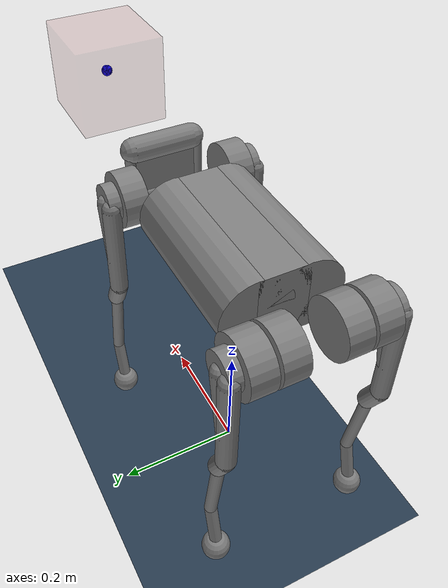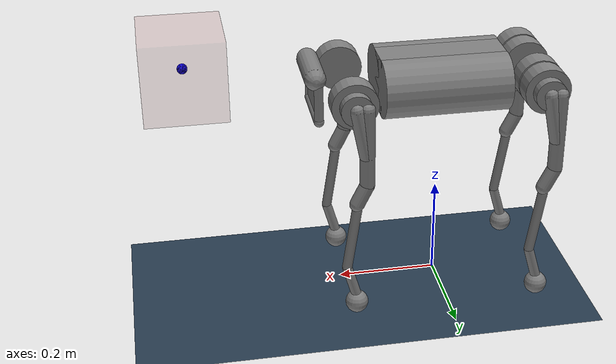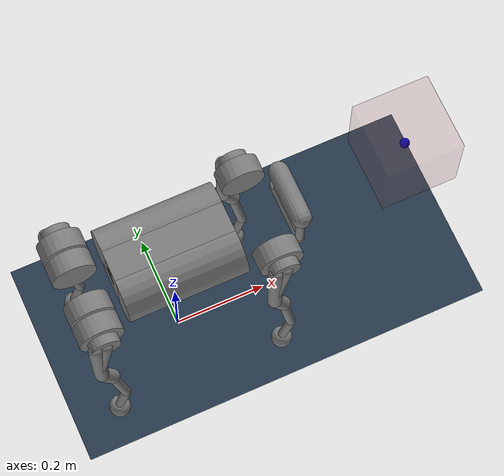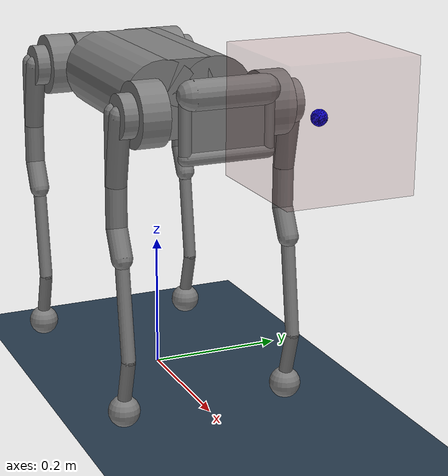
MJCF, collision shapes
<mujoco model="go1 scene">
  <include file="go1.xml"/>

  <statistic center="0.3 0 0.3" extent="0.8" meansize="0.08"/>

  <visual>
    <headlight diffuse="0.6 0.6 0.6" ambient="0.1 0.1 0.1" specular="0 0 0"/>
    <global azimuth="120" elevation="-20"/>
  </visual>

  <asset>
    <texture name="grid" type="2d" builtin="checker" rgb1=".2 .3 .4" rgb2=".1 0.15 0.2" width="512" height="512"
      mark="cross" markrgb=".8 .8 .8"/>
    <material name="grid" texture="grid" texrepeat="1 1" texuniform="true"/>
  </asset>

  <worldbody>
    <light pos="0 0 1.5" directional="true"/>
    <geom name="floor" size="1 1 0.01" type="plane" material="grid"/>
    <body name="trunk_target" pos="0.5 0 .5" mocap="true">
      <geom type="box" size=".08 .08 .08" contype="0" conaffinity="0" rgba=".6 .3 .3 .2"/>
      <site type="sphere" size="0.01" rgba="0 0 1 1" group="1"/>
    </body>
    <body name="FR_target" pos="0.5 0 .5" quat="0 1 0 0" mocap="true">
      <geom type="sphere" size=".04" contype="0" conaffinity="0" rgba=".6 .3 .3 .2"/>
      <site type="sphere" size="0.01" rgba="0 0 1 1" group="1"/>
    </body>
    <body name="FL_target" pos="0.5 0 .5" quat="0 1 0 0" mocap="true">
      <geom type="sphere" size=".04" contype="0" conaffinity="0" rgba=".6 .3 .3 .2"/>
      <site type="sphere" size="0.01" rgba="0 0 1 1" group="1"/>
    </body>
    <body name="RR_target" pos="0.5 0 .5" quat="0 1 0 0" mocap="true">
      <geom type="sphere" size=".04" contype="0" conaffinity="0" rgba=".6 .3 .3 .2"/>
      <site type="sphere" size="0.01" rgba="0 0 1 1" group="1"/>
    </body>
    <body name="RL_target" pos="0.5 0 .5" quat="0 1 0 0" mocap="true">
      <geom type="sphere" size=".04" contype="0" conaffinity="0" rgba=".6 .3 .3 .2"/>
      <site type="sphere" size="0.01" rgba="0 0 1 1" group="1"/>
    </body>
  </worldbody>
</mujoco>

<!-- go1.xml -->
<mujoco model="go1">
  <compiler angle="radian" meshdir="assets" autolimits="true"/>

  <option integrator="implicitfast" cone="elliptic" impratio="100"/>

  <default>
    <default class="go1">
      <geom friction="0.6" margin="0.001" condim="1"/>
      <joint axis="0 1 0" armature="0.01" frictionloss="0.2"/>
      <position kp="50" dampratio="1" forcerange="-23.7 23.7"/>
      <default class="abduction">
        <joint axis="1 0 0" range="-0.863 0.863"/>
        <position ctrlrange="-0.863 0.863"/>
      </default>
      <default class="hip">
        <joint range="-0.686 4.501"/>
        <position ctrlrange="-0.686 4.501"/>
      </default>
      <default class="knee">
        <joint range="-2.818 -0.888"/>
        <position forcerange="-35.55 35.55" ctrlrange="-2.818 -0.888"/>
      </default>
      <default class="visual">
        <geom type="mesh" contype="0" conaffinity="0" group="2" material="dark"/>
      </default>
      <default class="collision">
        <geom group="3" type="capsule"/>
        <default class="hip_left1">
          <geom size="0.046 0.02" pos="0 0.045 0" quat="1 1 0 0" type="cylinder"/>
        </default>
        <default class="hip_left2">
          <geom size="0.031 0.02" pos="0 0.065 0" quat="1 1 0 0" type="cylinder"/>
        </default>
        <default class="hip_left3">
          <geom size="0.046 0.02" quat="1 1 0 0" type="cylinder"/>
        </default>
        <default class="hip_right1">
          <geom size="0.046 0.02" pos="0 -0.045 0" quat="1 1 0 0" type="cylinder"/>
        </default>
        <default class="hip_right2">
          <geom size="0.031 0.02" pos="0 -0.065 0" quat="1 1 0 0" type="cylinder"/>
        </default>
        <default class="hip_right3">
          <geom size="0.046 0.02" quat="1 1 0 0" type="cylinder"/>
        </default>
        <default class="thigh1">
          <geom size="0.015" fromto="-0.02 0 0 -0.02 0 -0.16"/>
        </default>
        <default class="thigh2">
          <geom size="0.015" fromto="0 0 0 -0.02 0 -0.1"/>
        </default>
        <default class="thigh3">
          <geom size="0.015" fromto="-0.02 0 -0.16 0 0 -0.2"/>
        </default>
        <default class="calf1">
          <geom size="0.01" fromto="0 0 0 0.02 0 -0.13"/>
        </default>
        <default class="calf2">
          <geom size="0.01" fromto="0.02 0 -0.13 0 0 -0.2"/>
        </default>
        <default class="foot">
          <geom type="sphere" size="0.023" pos="0 0 -0.213" priority="1" solimp="0.015 1 0.023" condim="6"
            friction="0.8 0.02 0.01"/>
        </default>
      </default>
    </default>
  </default>

  <asset>
    <material name="dark" rgba="0.1 0.1 0.1 1"/>
    <mesh class="go1" file="trunk.stl"/>
    <mesh class="go1" file="hip.stl"/>
    <mesh class="go1" file="thigh_mirror.stl"/>
    <mesh class="go1" file="calf.stl"/>
    <mesh class="go1" file="thigh.stl"/>
  </asset>

  <worldbody>
    <light name="spotlight" mode="targetbodycom" target="trunk" pos="0 -1 2"/>
    <body name="trunk" pos="0 0 0.445" childclass="go1">
      <camera name="tracking" mode="trackcom" pos="0 -1 0.8" xyaxes="1 0 0 0 1 1"/>
      <site name="head" pos="0.3 0 0" rgba="1 0 0 1" size="0.02" group="5"/>
      <inertial pos="0.0223 0.002 -0.0005" quat="-0.00342088 0.705204 0.000106698 0.708996" mass="5.204"
        diaginertia="0.0716565 0.0630105 0.0168101"/>
      <freejoint/>
      <geom class="visual" mesh="trunk"/>
      <geom class="collision" size="0.125 0.04 0.057" type="box"/>
      <geom class="collision" quat="1 0 1 0" pos="0 -0.04 0" size="0.058 0.125" type="cylinder"/>
      <geom class="collision" quat="1 0 1 0" pos="0 +0.04 0" size="0.058 0.125" type="cylinder"/>
      <geom class="collision" pos="0.25 0 0" size="0.005 0.06 0.05" type="box"/>
      <geom class="collision" pos="0.25 0.06 -0.01" size="0.009 0.035"/>
      <geom class="collision" pos="0.25 -0.06 -0.01" size="0.009 0.035"/>
      <geom class="collision" pos="0.25 0 -0.05" size="0.01 0.06" quat="1 1 0 0"/>
      <geom class="collision" pos="0.255 0 0.0355" size="0.021 0.052" quat="1 1 0 0"/>
      <body name="FR_hip" pos="0.1881 -0.04675 0">
        <inertial pos="-0.0049166 0.00762615 -8.865e-05" quat="0.507341 0.514169 0.495027 0.482891" mass="0.68"
          diaginertia="0.000734064 0.000468438 0.000398719"/>
        <joint class="abduction" name="FR_hip_joint"/>
        <geom class="visual" mesh="hip" quat="1 0 0 0"/>
        <geom class="hip_right1"/>
        <geom class="hip_right2"/>
        <body name="FR_thigh" pos="0 -0.08 0">
          <inertial pos="-0.00304722 0.019315 -0.0305004" quat="0.65243 -0.0272313 0.0775126 0.753383" mass="1.009"
            diaginertia="0.00478717 0.00460903 0.000709268"/>
          <joint class="hip" name="FR_thigh_joint"/>
          <geom class="visual" mesh="thigh_mirror"/>
          <geom class="thigh1"/>
          <geom class="thigh2"/>
          <geom class="thigh3"/>
          <body name="FR_calf" pos="0 0 -0.213">
            <inertial pos="0.00429862 0.000976676 -0.146197" quat="0.691246 0.00357467 0.00511118 0.722592"
              mass="0.195862" diaginertia="0.00149767 0.00148468 3.58427e-05"/>
            <joint class="knee" name="FR_calf_joint"/>
            <geom class="visual" mesh="calf"/>
            <geom class="calf1"/>
            <geom class="calf2"/>
            <geom name="FR" class="foot"/>
            <site name="FR" pos="0 0 -0.213" type="sphere" size="0.023" group="5"/>
          </body>
        </body>
      </body>
      <body name="FL_hip" pos="0.1881 0.04675 0">
        <inertial pos="-0.0049166 -0.00762615 -8.865e-05" quat="0.482891 0.495027 0.514169 0.507341" mass="0.68"
          diaginertia="0.000734064 0.000468438 0.000398719"/>
        <joint class="abduction" name="FL_hip_joint"/>
        <geom class="visual" mesh="hip"/>
        <geom class="hip_left1"/>
        <geom class="hip_left2"/>
        <body name="FL_thigh" pos="0 0.08 0">
          <inertial pos="-0.00304722 -0.019315 -0.0305004" quat="0.753383 0.0775126 -0.0272313 0.65243" mass="1.009"
            diaginertia="0.00478717 0.00460903 0.000709268"/>
          <joint class="hip" name="FL_thigh_joint"/>
          <geom class="visual" mesh="thigh"/>
          <geom class="thigh1"/>
          <geom class="thigh2"/>
          <geom class="thigh3"/>
          <body name="FL_calf" pos="0 0 -0.213">
            <inertial pos="0.00429862 0.000976676 -0.146197" quat="0.691246 0.00357467 0.00511118 0.722592"
              mass="0.195862" diaginertia="0.00149767 0.00148468 3.58427e-05"/>
            <joint class="knee" name="FL_calf_joint"/>
            <geom class="visual" mesh="calf"/>
            <geom class="calf1"/>
            <geom class="calf2"/>
            <geom name="FL" class="foot"/>
            <site name="FL" pos="0 0 -0.213" type="sphere" size="0.023" group="5"/>
          </body>
        </body>
      </body>
      <body name="RR_hip" pos="-0.1881 -0.04675 0">
        <inertial pos="0.0049166 0.00762615 -8.865e-05" quat="0.495027 0.482891 0.507341 0.514169" mass="0.68"
          diaginertia="0.000734064 0.000468438 0.000398719"/>
        <joint class="abduction" name="RR_hip_joint"/>
        <geom class="visual" quat="0 0 0 -1" mesh="hip"/>
        <geom class="hip_right1"/>
        <geom class="hip_right2"/>
        <geom class="hip_right3"/>
        <body name="RR_thigh" pos="0 -0.08 0">
          <inertial pos="-0.00304722 0.019315 -0.0305004" quat="0.65243 -0.0272313 0.0775126 0.753383" mass="1.009"
            diaginertia="0.00478717 0.00460903 0.000709268"/>
          <joint class="hip" name="RR_thigh_joint"/>
          <geom class="visual" mesh="thigh_mirror"/>
          <geom class="thigh1"/>
          <geom class="thigh2"/>
          <geom class="thigh3"/>
          <body name="RR_calf" pos="0 0 -0.213">
            <inertial pos="0.00429862 0.000976676 -0.146197" quat="0.691246 0.00357467 0.00511118 0.722592"
              mass="0.195862" diaginertia="0.00149767 0.00148468 3.58427e-05"/>
            <joint class="knee" name="RR_calf_joint"/>
            <geom class="visual" mesh="calf"/>
            <geom class="calf1"/>
            <geom class="calf2"/>
            <geom name="RR" class="foot"/>
            <site name="RR" pos="0 0 -0.213" type="sphere" size="0.023" group="5"/>
          </body>
        </body>
      </body>
      <body name="RL_hip" pos="-0.1881 0.04675 0">
        <inertial pos="0.0049166 -0.00762615 -8.865e-05" quat="0.514169 0.507341 0.482891 0.495027" mass="0.68"
          diaginertia="0.000734064 0.000468438 0.000398719"/>
        <joint class="abduction" name="RL_hip_joint"/>
        <geom class="visual" quat="0 0 1 0" mesh="hip"/>
        <geom class="hip_left1"/>
        <geom class="hip_left2"/>
        <geom class="hip_left3"/>
        <body name="RL_thigh" pos="0 0.08 0">
          <inertial pos="-0.00304722 -0.019315 -0.0305004" quat="0.753383 0.0775126 -0.0272313 0.65243" mass="1.009"
            diaginertia="0.00478717 0.00460903 0.000709268"/>
          <joint class="hip" name="RL_thigh_joint"/>
          <geom class="visual" mesh="thigh"/>
          <geom class="thigh1"/>
          <geom class="thigh2"/>
          <geom class="thigh3"/>
          <body name="RL_calf" pos="0 0 -0.213">
            <inertial pos="0.00429862 0.000976676 -0.146197" quat="0.691246 0.00357467 0.00511118 0.722592"
              mass="0.195862" diaginertia="0.00149767 0.00148468 3.58427e-05"/>
            <joint class="knee" name="RL_calf_joint"/>
            <geom class="visual" mesh="calf"/>
            <geom class="calf1"/>
            <geom class="calf2"/>
            <geom name="RL" class="foot"/>
            <site name="RL" pos="0 0 -0.213" type="sphere" size="0.023" group="5"/>
          </body>
        </body>
      </body>
    </body>
  </worldbody>

  <actuator>
    <position class="abduction" name="FR_hip" joint="FR_hip_joint"/>
    <position class="hip" name="FR_thigh" joint="FR_thigh_joint"/>
    <position class="knee" name="FR_calf" joint="FR_calf_joint"/>
    <position class="abduction" name="FL_hip" joint="FL_hip_joint"/>
    <position class="hip" name="FL_thigh" joint="FL_thigh_joint"/>
    <position class="knee" name="FL_calf" joint="FL_calf_joint"/>
    <position class="abduction" name="RR_hip" joint="RR_hip_joint"/>
    <position class="hip" name="RR_thigh" joint="RR_thigh_joint"/>
    <position class="knee" name="RR_calf" joint="RR_calf_joint"/>
    <position class="abduction" name="RL_hip" joint="RL_hip_joint"/>
    <position class="hip" name="RL_thigh" joint="RL_thigh_joint"/>
    <position class="knee" name="RL_calf" joint="RL_calf_joint"/>
  </actuator>

  <keyframe>
    <key name="home" qpos="0 0 0.27 1 0 0 0 0 0.9 -1.8 0 0.9 -1.8 0 0.9 -1.8 0 0.9 -1.8"
      ctrl="0 0.9 -1.8 0 0.9 -1.8 0 0.9 -1.8 0 0.9 -1.8"/>
  </keyframe>
</mujoco>
